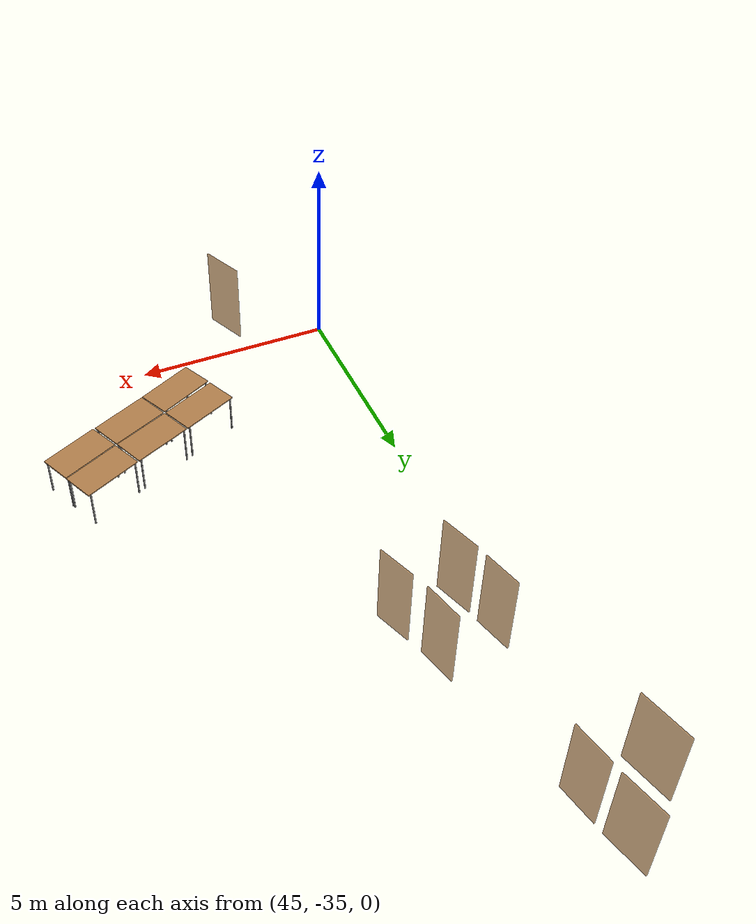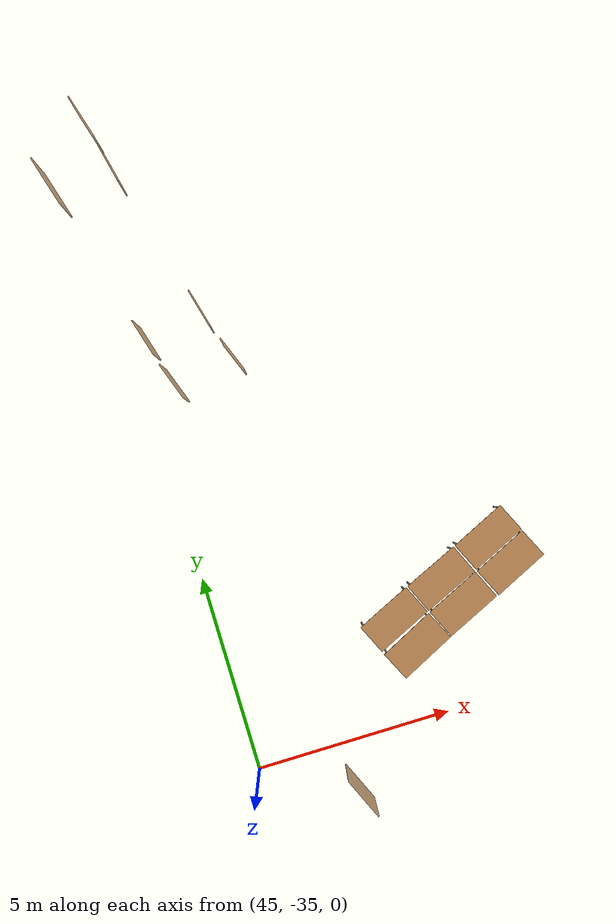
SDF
<sdf version="1.7">
 <world name="world">
  <include><uri>model://sun</uri></include>
  <include>
   <name>OpenRobotics/Table_3</name>
   <uri>model://Table</uri>
   <pose>49.315199858933966 -32.279987743199165 0.0 0 0 0.4303</pose>
   <static>True</static>
  </include>
  <include>
   <name>OpenRobotics/Table_4</name>
   <uri>model://Table</uri>
   <pose>50.718865642363795 -31.653960999048657 0.0 0 0 0.4167</pose>
   <static>True</static>
  </include>
  <include>
   <name>OpenRobotics/Table_5</name>
   <uri>model://Table</uri>
   <pose>52.13243403065564 -31.01780400394735 0.0 0 0 0.4347</pose>
   <static>True</static>
  </include>
  <include>
   <name>OpenRobotics/Table_6</name>
   <uri>model://Table</uri>
   <pose>52.47583815558329 -31.77506871828068 0.0 0 0 0.4389</pose>
   <static>True</static>
  </include>
  <include>
   <name>OpenRobotics/Table_7</name>
   <uri>model://Table</uri>
   <pose>51.06215594424706 -32.41122571338198 0.0 0 0 0.4288</pose>
   <static>True</static>
  </include>
  <include>
   <name>OpenRobotics/Table_8</name>
   <uri>model://Table</uri>
   <pose>49.67875066271883 -33.06764321038489 0.0 0 0 0.4547</pose>
   <static>True</static>
  </include>
  <model name="D5">
   <pose>47.334678886530554 -36.035351446791466 0.0 0 0 -1.15391151212805</pose>
   <link name="right">
    <pose>0 0 1.11 0 0 0</pose>
    <visual name="right_visual">
     <geometry><box><size>1.1116058339812642 0.03 2.2</size></box></geometry>
     <material><ambient>0.5 0.25 0 0.6</ambient><diffuse>0.5 0.25 0 0.6</diffuse></material>
    </visual>
    <collision name="right_collision">
     <geometry><box><size>1.1116058339812642 0.03 2.2</size></box></geometry>
     <surface><contact><collide_bitmask>0x02</collide_bitmask></contact></surface>
    </collision>
    <inertial>
     <mass>50.0</mass>
     <inertia><ixx>20.17041666666667</ixx><iyy>25.315281375588263</iyy><izz>5.152364708921591</izz></inertia>
    </inertial>
   </link>
   <joint name="right_joint" type="revolute">
    <parent>world</parent>
    <child>right</child>
    <axis><xyz>0 0 -1</xyz><limit><lower>0</lower><upper>1.57</upper></limit></axis>
    <pose>0.5608029169906321 0 0 0 0 0</pose>
   </joint>
   <plugin name="door_D5" filename="libdoor.so">
    <v_max_door>0.5</v_max_door>
    <a_max_door>0.3</a_max_door>
    <a_nom_door>0.15</a_nom_door>
    <dx_min_door>0.01</dx_min_door>
    <f_max_door>500.0</f_max_door>
    <door name="D5" type="SwingDoor" left_joint_name="empty_joint" right_joint_name="right_joint"/>
   </plugin>
  </model>
  <model name="D12">
   <pose>47.4111679723613 -24.929295536428306 0.0 0 0 -1.2067744343242672</pose>
   <link name="right">
    <pose>0 0 1.11 0 0 0</pose>
    <visual name="right_visual">
     <geometry><box><size>0.9337420534150855 0.03 2.2</size></box></geometry>
     <material><ambient>0.5 0.25 0 0.6</ambient><diffuse>0.5 0.25 0 0.6</diffuse></material>
    </visual>
    <collision name="right_collision">
     <geometry><box><size>0.9337420534150855 0.03 2.2</size></box></geometry>
     <surface><contact><collide_bitmask>0x02</collide_bitmask></contact></surface>
    </collision>
    <inertial>
     <mass>50.0</mass>
     <inertia><ixx>20.17041666666667</ixx><iyy>23.79947592631592</iyy><izz>3.6365592596492524</izz></inertia>
    </inertial>
   </link>
   <joint name="right_joint" type="revolute">
    <parent>world</parent>
    <child>right</child>
    <axis><xyz>0 0 1</xyz><limit><lower>0</lower><upper>1.57</upper></limit></axis>
    <pose>0.4718710267075428 0 0 0 0 0</pose>
   </joint>
   <plugin name="door_D12" filename="libdoor.so">
    <v_max_door>0.5</v_max_door>
    <a_max_door>0.3</a_max_door>
    <a_nom_door>0.15</a_nom_door>
    <dx_min_door>0.01</dx_min_door>
    <f_max_door>500.0</f_max_door>
    <door name="D12" type="SwingDoor" left_joint_name="empty_joint" right_joint_name="right_joint"/>
   </plugin>
  </model>
  <model name="D13">
   <pose>46.973233809066926 -23.635184433224815 0.0 0 0 -1.3188596632420089</pose>
   <link name="right">
    <pose>0 0 1.11 0 0 0</pose>
    <visual name="right_visual">
     <geometry><box><size>0.985860510775004 0.03 2.2</size></box></geometry>
     <material><ambient>0.5 0.25 0 0.6</ambient><diffuse>0.5 0.25 0 0.6</diffuse></material>
    </visual>
    <collision name="right_collision">
     <geometry><box><size>0.985860510775004 0.03 2.2</size></box></geometry>
     <surface><contact><collide_bitmask>0x02</collide_bitmask></contact></surface>
    </collision>
    <inertial>
     <mass>50.0</mass>
     <inertia><ixx>20.17041666666667</ixx><iyy>24.216337277939804</iyy><izz>4.0534206112731335</izz></inertia>
    </inertial>
   </link>
   <joint name="right_joint" type="revolute">
    <parent>world</parent>
    <child>right</child>
    <axis><xyz>0 0 -1</xyz><limit><lower>0</lower><upper>1.57</upper></limit></axis>
    <pose>0.497930255387502 0 0 0 0 0</pose>
   </joint>
   <plugin name="door_D13" filename="libdoor.so">
    <v_max_door>0.5</v_max_door>
    <a_max_door>0.3</a_max_door>
    <a_nom_door>0.15</a_nom_door>
    <dx_min_door>0.01</dx_min_door>
    <f_max_door>500.0</f_max_door>
    <door name="D13" type="SwingDoor" left_joint_name="empty_joint" right_joint_name="right_joint"/>
   </plugin>
  </model>
  <model name="D14">
   <pose>45.88867093058727 -19.64619893101998 0.0 0 0 -1.3543970765350073</pose>
   <link name="right">
    <pose>0 0 1.11 0 0 0</pose>
    <visual name="right_visual">
     <geometry><box><size>0.9908553430227147 0.03 2.2</size></box></geometry>
     <material><ambient>0.5 0.25 0 0.6</ambient><diffuse>0.5 0.25 0 0.6</diffuse></material>
    </visual>
    <collision name="right_collision">
     <geometry><box><size>0.9908553430227147 0.03 2.2</size></box></geometry>
     <surface><contact><collide_bitmask>0x02</collide_bitmask></contact></surface>
    </collision>
    <inertial>
     <mass>50.0</mass>
     <inertia><ixx>20.17041666666667</ixx><iyy>24.2574762949861</iyy><izz>4.094559628319424</izz></inertia>
    </inertial>
   </link>
   <joint name="right_joint" type="revolute">
    <parent>world</parent>
    <child>right</child>
    <axis><xyz>0 0 1</xyz><limit><lower>0</lower><upper>1.57</upper></limit></axis>
    <pose>0.5004276715113574 0 0 0 0 0</pose>
   </joint>
   <plugin name="door_D14" filename="libdoor.so">
    <v_max_door>0.5</v_max_door>
    <a_max_door>0.3</a_max_door>
    <a_nom_door>0.15</a_nom_door>
    <dx_min_door>0.01</dx_min_door>
    <f_max_door>500.0</f_max_door>
    <door name="D14" type="SwingDoor" left_joint_name="empty_joint" right_joint_name="right_joint"/>
   </plugin>
  </model>
  <model name="D15">
   <pose>45.58960088144991 -18.396364992084592 0.0 0 0 -1.296644167364205</pose>
   <link name="right">
    <pose>0 0 1.11 0 0 0</pose>
    <visual name="right_visual">
     <geometry><box><size>1.1096018485833443 0.03 2.2</size></box></geometry>
     <material><ambient>0.5 0.25 0 0.6</ambient><diffuse>0.5 0.25 0 0.6</diffuse></material>
    </visual>
    <collision name="right_collision">
     <geometry><box><size>1.1096018485833443 0.03 2.2</size></box></geometry>
     <surface><contact><collide_bitmask>0x02</collide_bitmask></contact></surface>
    </collision>
    <inertial>
     <mass>50.0</mass>
     <inertia><ixx>20.17041666666667</ixx><iyy>25.296734426581565</iyy><izz>5.133817759914896</izz></inertia>
    </inertial>
   </link>
   <joint name="right_joint" type="revolute">
    <parent>world</parent>
    <child>right</child>
    <axis><xyz>0 0 -1</xyz><limit><lower>0</lower><upper>1.57</upper></limit></axis>
    <pose>0.5598009242916722 0 0 0 0 0</pose>
   </joint>
   <plugin name="door_D15" filename="libdoor.so">
    <v_max_door>0.5</v_max_door>
    <a_max_door>0.3</a_max_door>
    <a_nom_door>0.15</a_nom_door>
    <dx_min_door>0.01</dx_min_door>
    <f_max_door>500.0</f_max_door>
    <door name="D15" type="SwingDoor" left_joint_name="empty_joint" right_joint_name="right_joint"/>
   </plugin>
  </model>
  <model name="D17">
   <pose>44.32724640763151 -19.63549956484723 0.0 0 0 1.8422869865588756</pose>
   <link name="right">
    <pose>0 0 1.11 0 0 0</pose>
    <visual name="right_visual">
     <geometry><box><size>1.2896570405738117 0.03 2.2</size></box></geometry>
     <material><ambient>0.5 0.25 0 0.6</ambient><diffuse>0.5 0.25 0 0.6</diffuse></material>
    </visual>
    <collision name="right_collision">
     <geometry><box><size>1.2896570405738117 0.03 2.2</size></box></geometry>
     <surface><contact><collide_bitmask>0x02</collide_bitmask></contact></surface>
    </collision>
    <inertial>
     <mass>50.0</mass>
     <inertia><ixx>20.17041666666667</ixx><iyy>27.09673034292335</iyy><izz>6.933813676256676</izz></inertia>
    </inertial>
   </link>
   <joint name="right_joint" type="revolute">
    <parent>world</parent>
    <child>right</child>
    <axis><xyz>0 0 -1</xyz><limit><lower>0</lower><upper>1.57</upper></limit></axis>
    <pose>0.6498285202869059 0 0 0 0 0</pose>
   </joint>
   <plugin name="door_D17" filename="libdoor.so">
    <v_max_door>0.5</v_max_door>
    <a_max_door>0.3</a_max_door>
    <a_nom_door>0.15</a_nom_door>
    <dx_min_door>0.01</dx_min_door>
    <f_max_door>500.0</f_max_door>
    <door name="D17" type="SwingDoor" left_joint_name="empty_joint" right_joint_name="right_joint"/>
   </plugin>
  </model>
  <model name="D18">
   <pose>45.47509489879256 -23.926116134688215 0.0 0 0 1.8423285281827253</pose>
   <link name="right">
    <pose>0 0 1.11 0 0 0</pose>
    <visual name="right_visual">
     <geometry><box><size>0.9580193886466375 0.03 2.2</size></box></geometry>
     <material><ambient>0.5 0.25 0 0.6</ambient><diffuse>0.5 0.25 0 0.6</diffuse></material>
    </visual>
    <collision name="right_collision">
     <geometry><box><size>0.9580193886466375 0.03 2.2</size></box></geometry>
     <surface><contact><collide_bitmask>0x02</collide_bitmask></contact></surface>
    </collision>
    <inertial>
     <mass>50.0</mass>
     <inertia><ixx>20.17041666666667</ixx><iyy>23.99083812092866</iyy><izz>3.827921454261988</izz></inertia>
    </inertial>
   </link>
   <joint name="right_joint" type="revolute">
    <parent>world</parent>
    <child>right</child>
    <axis><xyz>0 0 1</xyz><limit><lower>0</lower><upper>1.57</upper></limit></axis>
    <pose>0.48400969432331875 0 0 0 0 0</pose>
   </joint>
   <plugin name="door_D18" filename="libdoor.so">
    <v_max_door>0.5</v_max_door>
    <a_max_door>0.3</a_max_door>
    <a_nom_door>0.15</a_nom_door>
    <dx_min_door>0.01</dx_min_door>
    <f_max_door>500.0</f_max_door>
    <door name="D18" type="SwingDoor" left_joint_name="empty_joint" right_joint_name="right_joint"/>
   </plugin>
  </model>
  <model name="D19">
   <pose>45.829995151203704 -25.132697316755024 0.0 0 0 1.9038844260786403</pose>
   <link name="right">
    <pose>0 0 1.11 0 0 0</pose>
    <visual name="right_visual">
     <geometry><box><size>0.9964211250376829 0.03 2.2</size></box></geometry>
     <material><ambient>0.5 0.25 0 0.6</ambient><diffuse>0.5 0.25 0 0.6</diffuse></material>
    </visual>
    <collision name="right_collision">
     <geometry><box><size>0.9964211250376829 0.03 2.2</size></box></geometry>
     <surface><contact><collide_bitmask>0x02</collide_bitmask></contact></surface>
    </collision>
    <inertial>
     <mass>50.0</mass>
     <inertia><ixx>20.17041666666667</ixx><iyy>24.303562743422344</iyy><izz>4.140646076755674</izz></inertia>
    </inertial>
   </link>
   <joint name="right_joint" type="revolute">
    <parent>world</parent>
    <child>right</child>
    <axis><xyz>0 0 -1</xyz><limit><lower>0</lower><upper>1.57</upper></limit></axis>
    <pose>0.5032105625188414 0 0 0 0 0</pose>
   </joint>
   <plugin name="door_D19" filename="libdoor.so">
    <v_max_door>0.5</v_max_door>
    <a_max_door>0.3</a_max_door>
    <a_nom_door>0.15</a_nom_door>
    <dx_min_door>0.01</dx_min_door>
    <f_max_door>500.0</f_max_door>
    <door name="D19" type="SwingDoor" left_joint_name="empty_joint" right_joint_name="right_joint"/>
   </plugin>
  </model>
 </world>
</sdf>
